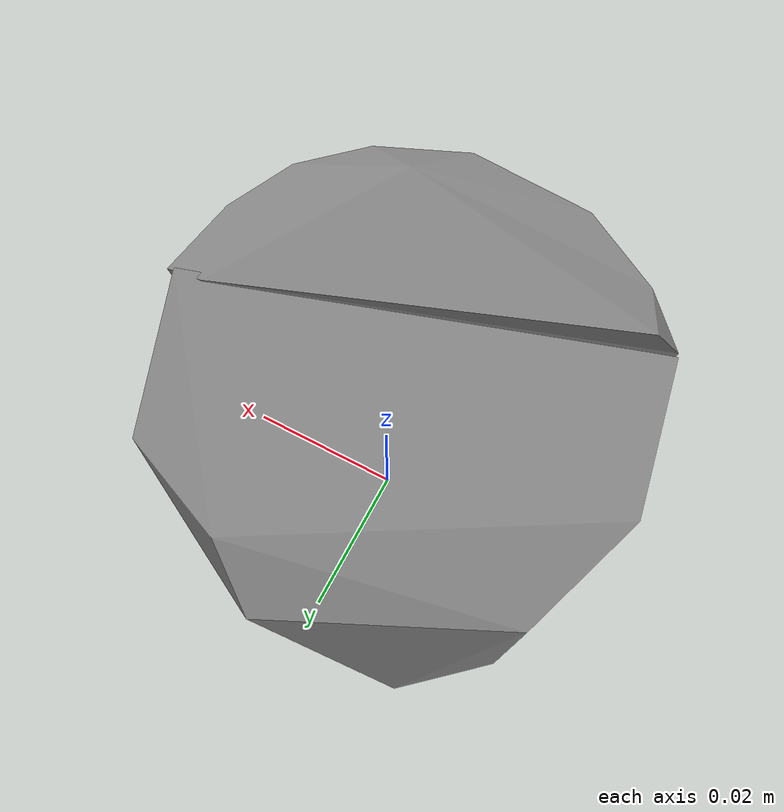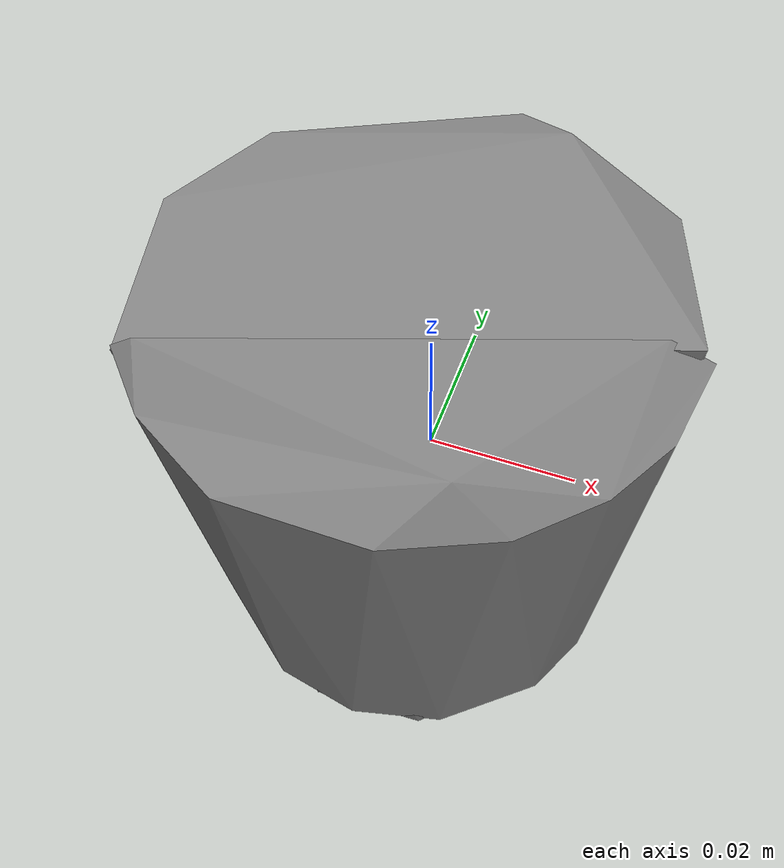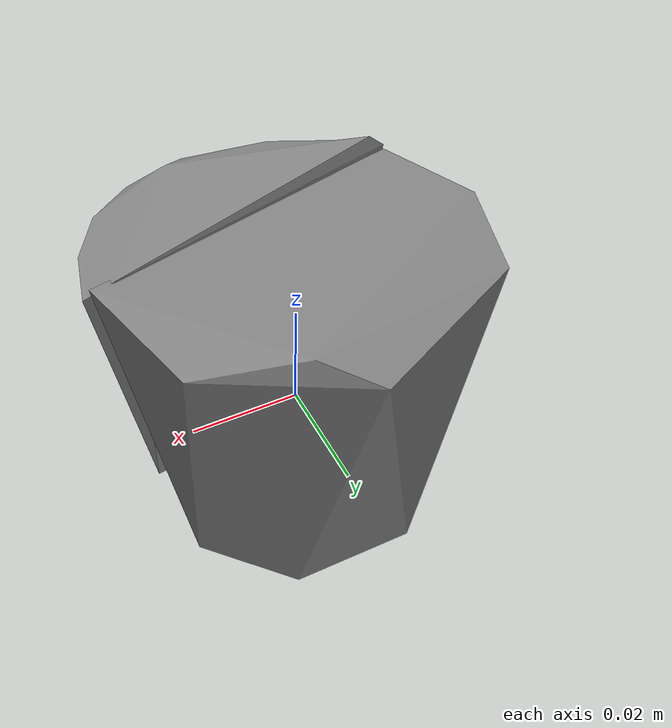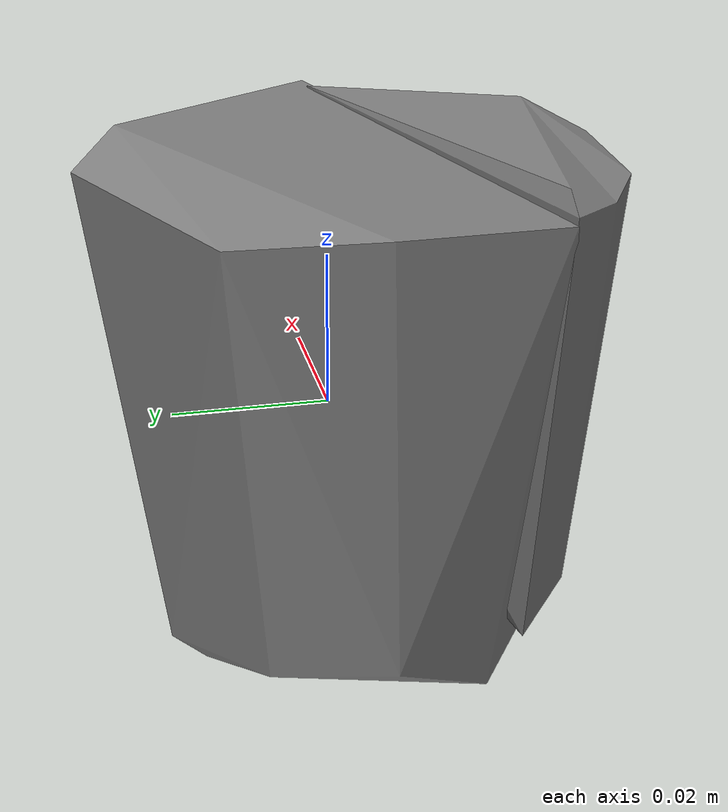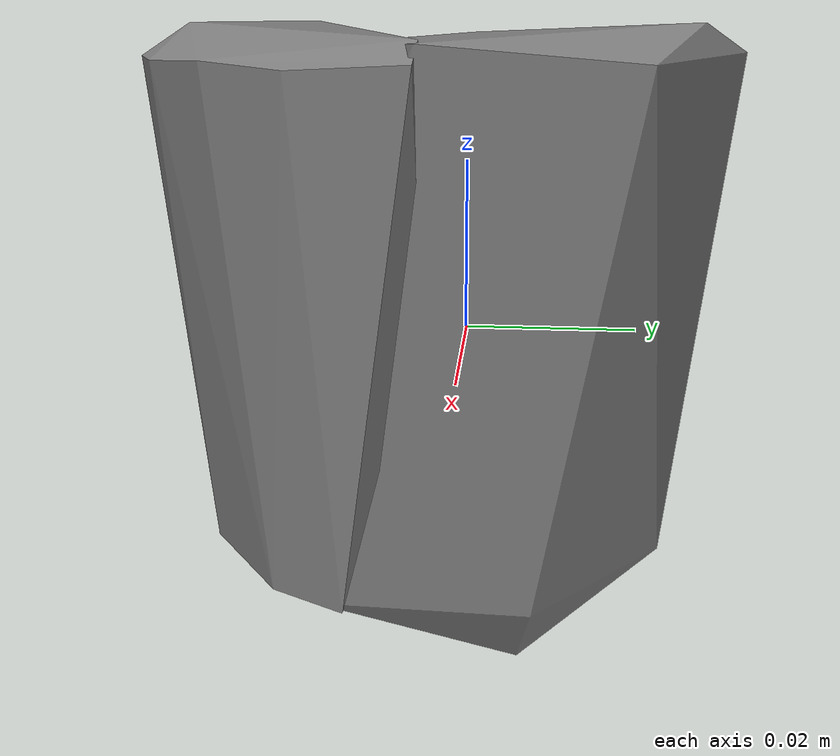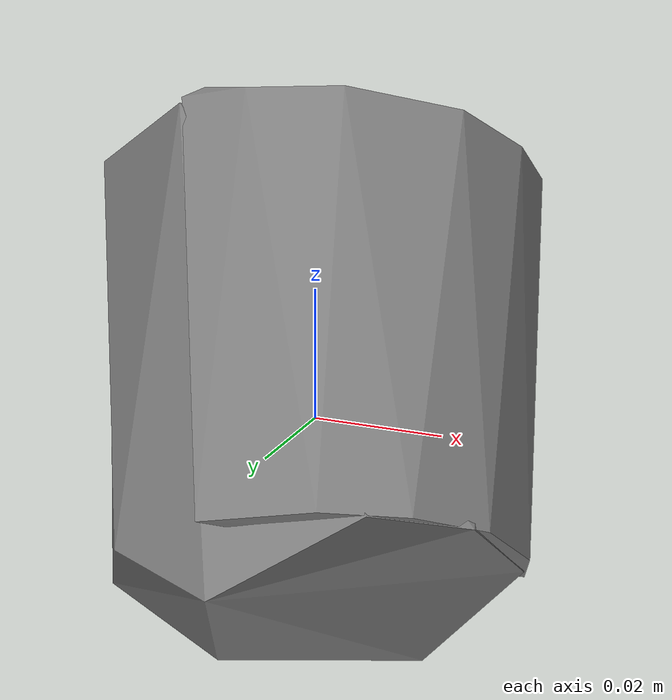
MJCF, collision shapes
<mujoco model="c_cups">
  <compiler angle="radian" />

  <asset>
    <mesh name="c_cups_visual_mesh" file="c_cups/textured.obj" />
    <mesh name="c_cups_collision_mesh_0" file="c_cups/textured_coacd_0.stl" />
    <mesh name="c_cups_collision_mesh_1" file="c_cups/textured_coacd_1.stl" />
    <mesh name="c_cups_collision_mesh_2" file="c_cups/textured_coacd_2.stl" />
    <mesh name="c_cups_collision_mesh_3" file="c_cups/textured_coacd_3.stl" />
    <texture name="c_cups_texture" type="2d" file="c_cups/texture_map.png" />
    <material name="c_cups_material" texture="c_cups_texture" />
  </asset>

  <worldbody>
    <body name="c_cups" pos="0 0 0" euler="0 0 0">
      <freejoint name="c_cups_joint" />
      <geom name="c_cups_visual_geom" type="mesh" mesh="c_cups_visual_mesh" material="c_cups_material" pos="0.01447497482279456 0.06461685625471408 -0.031162156357884614" euler="0 0 0" contype="0" conaffinity="0" group="0" />
      <geom name="c_cups_collision_geom_0" type="mesh" mesh="c_cups_collision_mesh_0" pos="0.01447497482279456 0.06461685625471408 -0.031162156357884614" euler="0 0 0" contype="1" conaffinity="1" group="3" />
      <geom name="c_cups_collision_geom_1" type="mesh" mesh="c_cups_collision_mesh_1" pos="0.01447497482279456 0.06461685625471408 -0.031162156357884614" euler="0 0 0" contype="1" conaffinity="1" group="3" />
      <geom name="c_cups_collision_geom_2" type="mesh" mesh="c_cups_collision_mesh_2" pos="0.01447497482279456 0.06461685625471408 -0.031162156357884614" euler="0 0 0" contype="1" conaffinity="1" group="3" />
      <geom name="c_cups_collision_geom_3" type="mesh" mesh="c_cups_collision_mesh_3" pos="0.01447497482279456 0.06461685625471408 -0.031162156357884614" euler="0 0 0" contype="1" conaffinity="1" group="3" />
      <inertial pos="0 0 0" euler="0 0 0" mass="0.017" diaginertia="0.001 0.001 0.001" />
    </body>
  </worldbody>
</mujoco>
